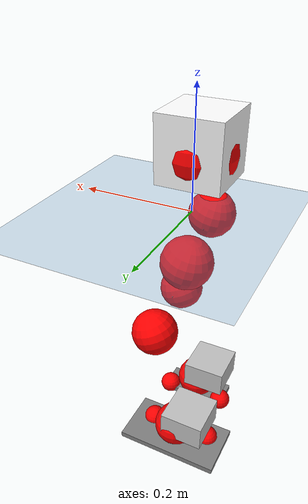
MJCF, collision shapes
<mujoco model="pi_12dof_release_v1">
  <compiler angle="radian" assetdir="assets" balanceinertia="true" inertiafromgeom="false"/>

  <option timestep="0.005" density="1.2" viscosity="2e-05"/>

  <size nkey="1"/>

  <visual>
    <quality shadowsize="8192"/>
    <map shadowclip="0.5"/>
  </visual>

  <default>
    <default class="/">
      <joint armature="0.01" damping="0.01" frictionloss="0.01"/>
      <geom contype="0" conaffinity="0" group="1" solref="-1000 -80"/>
      <site size="0.01 0.005 0.005" group="5"/>
      <general forcelimited="true" biastype="affine" gainprm="20" biasprm="0 -20 -0.5"/>
      <default class="foot">
        <geom size="0.0845 0.036 0.005" type="box" condim="6" group="4" priority="1" friction="0.9 0.2 0.2" solimp="0.015 1 0.005"/>
      </default>
      <default class="reward_collision_sphere">
        <geom group="5" rgba="1 0 0 1"/>
      </default>
    </default>
  </default>

  <asset>
    <texture type="skybox" colorspace="auto" name="//unnamed_texture_0" builtin="gradient" rgb1="0.95 0.95 0.95" rgb2="0.95 0.95 0.95" width="100" height="600"/>
    <texture type="2d" colorspace="auto" name="texplane" builtin="checker" rgb1="0.345 0.575 0.748" rgb2="0.345 0.575 0.748" markrgb="1 1 1" width="512" height="512"/>
    <material name="MatPlane" class="/" texture="texplane" texuniform="true" texrepeat="2 2" specular="0.9"/>
    <mesh name="baselink_1" class="/" file="baselink_1.STL"/>
    <mesh name="r_hip_pitch_link" class="/" file="r_hip_pitch_link.STL"/>
    <mesh name="r_hip_roll_link" class="/" file="r_hip_roll_link.STL"/>
    <mesh name="r_thigh_link" class="/" file="r_thigh_link.STL"/>
    <mesh name="r_calf_link" class="/" file="r_calf_link.STL"/>
    <mesh name="r_ankle_pitch_link" class="/" file="r_ankle_pitch_link.STL"/>
    <mesh name="r_ankle_roll_link" class="/" file="r_ankle_roll_link.STL"/>
    <mesh name="l_hip_pitch_link" class="/" file="l_hip_pitch_link.STL"/>
    <mesh name="l_hip_roll_link" class="/" file="l_hip_roll_link.STL"/>
    <mesh name="l_thigh_link" class="/" file="l_thigh_link.STL"/>
    <mesh name="l_calf_link" class="/" file="l_calf_link.STL"/>
    <mesh name="l_ankle_pitch_link" class="/" file="l_ankle_pitch_link.STL"/>
    <mesh name="l_ankle_roll_link" class="/" file="l_ankle_roll_link.STL"/>
  </asset>

  <worldbody>
    <geom name="floor" class="/" size="100 100 0.125" type="plane" group="0" material="MatPlane"/>
    <light name="toplight_shadow" class="/" pos="0 0 5" dir="0.0990148 0.0990148 -0.990148" type="directional" ambient="0.04 0.04 0.04" diffuse="0.55 0.55 0.55" specular="0.12 0.12 0.12"/>
    <light name="toplight_fill" class="/" pos="0 0 5" dir="0.0990148 0.0990148 -0.990148" type="directional" castshadow="false" ambient="0.04 0.04 0.04" diffuse="0.3 0.3 0.3" specular="0.08 0.08 0.08"/>
    <body name="trunk" pos="-0.00966211 -0.00304524 -0.00119879" quat="1 0.000366056 0.000108052 0.000385989">
      <inertial pos="0.00317217 -0.00187037 0.0570046" quat="0.701386 0.00457112 0.031237 0.712082" mass="2.70374" diaginertia="0.00419973 0.00511383 0.0222781"/>
      <joint name="//unnamed_joint_0" type="free"/>
      <geom name="//unnamed_geom_1" class="/" type="mesh" density="0" rgba="1 1 1 1" mesh="baselink_1"/>
      <geom name="//unnamed_geom_2" class="/" size="0.0536645 0.0536645 0.0536645" pos="0 0 0.112445" type="box" rgba="1 1 1 1"/>
      <geom name="//unnamed_geom_3" class="reward_collision_sphere" size="0.059031" pos="0 0 0.0983892"/>
      <site name="imu" class="/" pos="-0.00758449 -0.00178669 0.0558144" size="0.0107329"/>
      <camera name="track" class="/" pos="0 -1.85538 0" quat="0.707107 0.707107 0 0" mode="trackcom"/>
      <camera name="ego_camera" class="/" pos="0.0664967 0 0.253001" quat="-0.5 -0.5 0.5 0.5"/>
      <body name="r_hip_pitch_link" pos="-0.00339499 -0.0198879 -0.0409596" quat="0.991707 0.00136 -0.1285 0.00151578">
        <inertial pos="0.0114049 -0.048196 -0.000115999" quat="-0.020186 0.706265 -0.0343957 0.706823" mass="0.452698" diaginertia="5.87688e-05 7.19332e-05 0.000443733"/>
        <joint name="r_hip_pitch_joint" class="/" pos="0 0 0" axis="-0.0408182 -0.999129 -0.00871238" range="-1.95949 1.12209" armature="0.0109596" damping="0" frictionloss="0.0105145"/>
        <geom name="//unnamed_geom_4" class="/" type="mesh" density="0" rgba="0.75294 0.75294 0.75294 1" mesh="r_hip_pitch_link"/>
        <geom name="//unnamed_geom_5" class="/" size="0.000536645 0.000536645 0.000536645" type="box" rgba="0.75294 0.75294 0.75294 1"/>
        <body name="r_hip_roll_link" pos="0.0062992 -0.0516139 0.00509411" quat="0.999998 0.00136907 0.00101411 -0.000357631">
          <inertial pos="-0.000368412 -0.00156628 -0.0738404" quat="0.694992 -0.067586 -0.0871 0.710515" mass="0.503795" diaginertia="0.000192429 0.000197643 0.00071132"/>
          <joint name="r_hip_roll_joint" class="/" pos="0 0 0" axis="-0.999064 -0.0399177 -0.0166942" stiffness="0.00280559" range="-0.105219 0.307821" armature="0.00863056" damping="0.0267421" frictionloss="0.0145684"/>
          <geom name="//unnamed_geom_6" class="/" type="mesh" density="0" rgba="0.75294 0.75294 0.75294 1" mesh="r_hip_roll_link"/>
          <geom name="//unnamed_geom_7" class="/" size="0.000536645 0.000536645 0.000536645" type="box" rgba="0.75294 0.75294 0.75294 1"/>
          <geom name="//unnamed_geom_8" class="reward_collision_sphere" size="0.0429316"/>
          <body name="r_thigh_link" pos="-0.00322185 0.0122234 -0.0967286" quat="0.999994 0.00132926 0.00304834 0.00112134">
            <inertial pos="-0.00412203 0.00191186 -0.0671938" quat="0.74271 0.667607 -0.0285118 -0.0432387" mass="0.120332" diaginertia="6.96884e-05 6.13586e-05 0.000327822"/>
            <joint name="r_thigh_joint" class="/" pos="0 0 0" axis="-0.0184346 -0.0188906 -0.999652" stiffness="0.0559147" range="-0.442214 0.373442" armature="0.0114004" damping="0.0104671" frictionloss="0.0128618"/>
            <geom name="//unnamed_geom_9" class="/" type="mesh" density="0" rgba="0.75294 0.75294 0.75294 1" mesh="r_thigh_link"/>
            <geom name="//unnamed_geom_10" class="/" size="0.000536645 0.000536645 0.000536645" type="box" rgba="0.75294 0.75294 0.75294 1"/>
            <body name="r_calf_link" pos="0.0117636 -0.0137877 -0.0902481" quat="0.947893 0.000192626 0.31859 0.000325078">
              <inertial pos="-0.0116706 -0.00246945 -0.0877984" quat="0.999603 0.0233014 -0.00526004 0.0149615" mass="0.871891" diaginertia="0.00163853 0.0022414 0.000828202"/>
              <joint name="r_calf_joint" class="/" pos="0 0 0" axis="-0.0512846 -0.998636 -0.00978392" stiffness="0.0209267" range="-1.67441 0.643156" armature="0.00852538" damping="0.00754962" frictionloss="0.0107404"/>
              <geom name="//unnamed_geom_11" class="/" type="mesh" density="0" rgba="0.75294 0.75294 0.75294 1" mesh="r_calf_link"/>
              <geom name="//unnamed_geom_12" class="/" size="0.000536645 0.000536645 0.000536645" type="box" rgba="0.75294 0.75294 0.75294 1"/>
              <geom name="//unnamed_geom_13" class="reward_collision_sphere" size="0.0429316"/>
              <body name="r_ankle_pitch_link" pos="0.0013622 0.00699505 -0.202397" quat="0.980056 -4.05389e-05 -0.198723 2.59239e-05">
                <inertial pos="0.00871067 -0.00932574 -0.00153681" quat="0.00135322 0.706705 -0.00383298 0.707497" mass="0.211153" diaginertia="0.000165957 0.000148098 0.000642528"/>
                <joint name="r_ankle_pitch_joint" class="/" pos="0 0 0" axis="-0.0315181 -0.999501 -0.00224487" range="-1.36927 0.512775" armature="0.0150412" damping="0" frictionloss="0.0145055"/>
                <geom name="//unnamed_geom_14" class="/" type="mesh" density="0" rgba="0.75294 0.75294 0.75294 1" mesh="r_ankle_pitch_link"/>
                <geom name="//unnamed_geom_15" class="/" size="0.0418583 0.0429316 0.0268323" type="box" rgba="0.75294 0.75294 0.75294 1"/>
                <body name="r_ankle_roll_link" pos="0.0709319 0.000941291 -0.00893191" quat="0.999983 0.00559533 0.00127615 -0.000379833">
                  <inertial pos="-0.0338293 0.00647166 -0.0290278" quat="0.560688 0.43041 0.434404 0.558274" mass="0.710252" diaginertia="0.000583786 0.000627008 0.00132727"/>
                  <joint name="r_ankle_roll_joint" class="/" pos="0 0 0" axis="-0.998315 0.0577361 -0.00585384" stiffness="0.028047" range="-0.131676 0.149507" armature="0.0100563" damping="0" frictionloss="0.0106784"/>
                  <geom name="//unnamed_geom_16" class="/" type="mesh" density="0" rgba="0.75294 0.75294 0.75294 1" mesh="r_ankle_roll_link"/>
                  <geom name="//unnamed_geom_17" class="/" type="mesh" rgba="0.75294 0.75294 0.75294 1" mesh="r_ankle_roll_link"/>
                  <geom name="right_foot" class="foot" size="0.0667272 0.0304426 0.00543096" pos="-0.0452178 0 -0.0618446"/>
                  <geom name="//unnamed_geom_19" class="reward_collision_sphere" size="0.0429316" pos="-0.0443311 0 -0.0281112"/>
                  <geom name="//unnamed_geom_20" class="reward_collision_sphere" size="0.0214658" pos="0.0132993 0.0185538 -0.0562224"/>
                  <geom name="//unnamed_geom_21" class="reward_collision_sphere" size="0.0214658" pos="-0.106395 0.0185538 -0.0562224"/>
                  <site name="right_foot" class="foot" pos="-0.0452178 0 -0.0618446" size="0.0107329"/>
                </body>
              </body>
            </body>
          </body>
        </body>
      </body>
      <body name="l_hip_pitch_link" pos="-0.0129839 0.0310309 -0.0450524" quat="0.992094 0.000541318 -0.125494 -4.04199e-05">
        <inertial pos="-0.0100307 0.0628424 0.000345001" quat="-0.0115735 0.692309 -0.00232396 0.721504" mass="0.499402" diaginertia="7.04638e-05 7.14589e-05 0.000605368"/>
        <joint name="l_hip_pitch_joint" class="/" pos="0 0 0" axis="0.0625189 0.998044 0.000552649" stiffness="0.0488056" range="-1.0417 1.76289" armature="0.0164009" damping="0.00755153" frictionloss="0.0084445"/>
        <geom name="//unnamed_geom_22" class="/" type="mesh" density="0" rgba="0.75294 0.75294 0.75294 1" mesh="l_hip_pitch_link"/>
        <geom name="//unnamed_geom_23" class="/" size="0.000536645 0.000536645 0.000536645" type="box" rgba="0.75294 0.75294 0.75294 1"/>
        <body name="l_hip_roll_link" pos="-0.00495057 0.0496358 0.000229711" quat="0.999999 0.0012285 -9.07318e-05 0.000638003">
          <inertial pos="-0.00225054 -0.0108704 -0.0847219" quat="0.688404 -0.059161 -0.110971 0.714342" mass="0.43373" diaginertia="0.000179904 0.000176598 0.000738709"/>
          <joint name="l_hip_roll_joint" class="/" pos="0 0 0" axis="-0.999709 0.0240946 0.00110946" stiffness="0.0287301" range="-0.513436 0.0295131" armature="0.00570751" damping="0.0314434" frictionloss="0.0135757"/>
          <geom name="//unnamed_geom_24" class="/" type="mesh" density="0" rgba="0.75294 0.75294 0.75294 1" mesh="l_hip_roll_link"/>
          <geom name="//unnamed_geom_25" class="/" size="0.000536645 0.000536645 0.000536645" type="box" rgba="0.75294 0.75294 0.75294 1"/>
          <geom name="//unnamed_geom_26" class="reward_collision_sphere" size="0.0429316"/>
          <body name="l_thigh_link" pos="0.00622461 -0.0084671 -0.0855358" quat="0.999982 -9.51712e-05 -0.0035513 -0.00484424">
            <inertial pos="0.00121309 -0.000700706 -0.0796787" quat="0.664723 0.746818 -0.0131533 -0.0152684" mass="0.159565" diaginertia="6.82319e-05 6.93291e-05 0.000329636"/>
            <joint name="l_thigh_joint" class="/" pos="0 0 0" axis="0.0049149 0.0110697 -0.999927" stiffness="0.000818161" range="-0.386331 0.266166" armature="0.0110257" damping="0.0403627" frictionloss="0.011213"/>
            <geom name="//unnamed_geom_27" class="/" type="mesh" density="0" rgba="0.75294 0.75294 0.75294 1" mesh="l_thigh_link"/>
            <geom name="//unnamed_geom_28" class="/" size="0.000536645 0.000536645 0.000536645" type="box" rgba="0.75294 0.75294 0.75294 1"/>
            <body name="l_calf_link" pos="0.0109215 -0.00338056 -0.0996236" quat="0.947604 -0.000203803 0.319444 0.001267">
              <inertial pos="-0.00698625 -0.00122361 -0.100697" quat="0.998703 -0.0372746 0.0308249 -0.0159173" mass="1.00442" diaginertia="0.00180652 0.00222273 0.000889614"/>
              <joint name="l_calf_joint" class="/" pos="0 0 0" axis="0.0284544 0.998895 0.0374082" stiffness="0.0046825" range="-0.785707 1.59063" armature="0.0116471" damping="0.0131239" frictionloss="0.0154111"/>
              <geom name="//unnamed_geom_29" class="/" type="mesh" density="0" rgba="0.75294 0.75294 0.75294 1" mesh="l_calf_link"/>
              <geom name="//unnamed_geom_30" class="/" size="0.000536645 0.000536645 0.000536645" type="box" rgba="0.75294 0.75294 0.75294 1"/>
              <geom name="//unnamed_geom_31" class="reward_collision_sphere" size="0.0429316"/>
              <body name="l_ankle_pitch_link" pos="0.000769019 0.00381844 -0.206446" quat="0.980091 -0.00140601 -0.198541 -0.000204215">
                <inertial pos="0.00299253 -0.00203996 -0.00195023" quat="0.0521208 0.71781 -0.0190597 0.694023" mass="0.22483" diaginertia="0.000168585 0.000138622 0.00056705"/>
                <joint name="l_ankle_pitch_joint" class="/" pos="0 0 0" axis="-0.0019725 0.999922 0.0123026" range="-0.636797 1.18063" armature="0.0116841" damping="0.0421919" frictionloss="0.010515"/>
                <geom name="//unnamed_geom_32" class="/" type="mesh" density="0" rgba="0.75294 0.75294 0.75294 1" mesh="l_ankle_pitch_link"/>
                <geom name="//unnamed_geom_33" class="/" size="0.0418583 0.0429316 0.0268323" type="box" rgba="0.75294 0.75294 0.75294 1"/>
                <body name="l_ankle_roll_link" pos="0.0702938 0.00468893 0.000319905" quat="1 -0.000419336 0.00039595 0.00076172">
                  <inertial pos="-0.0116886 0.0117315 -0.031049" quat="0.562351 0.427564 0.429898 0.562261" mass="0.564231" diaginertia="0.000662763 0.000620762 0.00155028"/>
                  <joint name="l_ankle_roll_joint" class="/" pos="0 0 0" axis="-0.999957 -0.00837959 -0.00409027" range="-0.174058 0.271861" armature="0.0109138" damping="0" frictionloss="0.0056702"/>
                  <geom name="//unnamed_geom_34" class="/" type="mesh" density="0" rgba="0.75294 0.75294 0.75294 1" mesh="l_ankle_roll_link"/>
                  <geom name="//unnamed_geom_35" class="/" type="mesh" rgba="0.75294 0.75294 0.75294 1" mesh="l_ankle_roll_link"/>
                  <geom name="left_foot" class="foot" size="0.10033 0.0527631 0.00590654" pos="-0.0452178 0 -0.0618446"/>
                  <geom name="//unnamed_geom_37" class="reward_collision_sphere" size="0.0429316" pos="-0.0443311 0 -0.0281112"/>
                  <geom name="//unnamed_geom_38" class="reward_collision_sphere" size="0.0214658" pos="0.0132993 -0.0185538 -0.0562224"/>
                  <geom name="//unnamed_geom_39" class="reward_collision_sphere" size="0.0214658" pos="-0.106395 -0.0185538 -0.0562224"/>
                  <site name="left_foot" class="foot" pos="-0.0452178 0 -0.0618446" size="0.0107329"/>
                </body>
              </body>
            </body>
          </body>
        </body>
      </body>
    </body>
  </worldbody>

  <contact>
    <pair class="/" geom1="floor" geom2="right_foot" name="//unnamed_contact_1"/>
    <pair class="/" geom1="floor" geom2="left_foot" name="//unnamed_contact_0"/>
  </contact>

  <actuator>
    <general name="r_hip_pitch_joint" class="/" joint="r_hip_pitch_joint" forcerange="-19.414 19.414" gainprm="21.9305" biasprm="0 -21.9305 -0.57331"/>
    <general name="r_hip_roll_joint" class="/" joint="r_hip_roll_joint" forcerange="-14.0377 14.0377" gainprm="21.9305" biasprm="0 -21.9305 -0.57331"/>
    <general name="r_thigh_joint" class="/" joint="r_thigh_joint" forcerange="-25.1315 25.1315" gainprm="21.9305" biasprm="0 -21.9305 -0.57331"/>
    <general name="r_calf_joint" class="/" joint="r_calf_joint" forcerange="-12.8995 12.8995" gainprm="21.9305" biasprm="0 -21.9305 -0.57331"/>
    <general name="r_ankle_pitch_joint" class="/" joint="r_ankle_pitch_joint" forcerange="-23.6554 23.6554" gainprm="21.9305" biasprm="0 -21.9305 -0.57331"/>
    <general name="r_ankle_roll_joint" class="/" joint="r_ankle_roll_joint" forcerange="-20.8638 20.8638" gainprm="21.9305" biasprm="0 -21.9305 -0.57331"/>
    <general name="l_hip_pitch_joint" class="/" joint="l_hip_pitch_joint" forcerange="-22.5021 22.5021" gainprm="21.9305" biasprm="0 -21.9305 -0.57331"/>
    <general name="l_hip_roll_joint" class="/" joint="l_hip_roll_joint" forcerange="-29.9635 29.9635" gainprm="21.9305" biasprm="0 -21.9305 -0.57331"/>
    <general name="l_thigh_joint" class="/" joint="l_thigh_joint" forcerange="-19.5928 19.5928" gainprm="21.9305" biasprm="0 -21.9305 -0.57331"/>
    <general name="l_calf_joint" class="/" joint="l_calf_joint" forcerange="-22.508 22.508" gainprm="21.9305" biasprm="0 -21.9305 -0.57331"/>
    <general name="l_ankle_pitch_joint" class="/" joint="l_ankle_pitch_joint" forcerange="-22.9708 22.9708" gainprm="21.9305" biasprm="0 -21.9305 -0.57331"/>
    <general name="l_ankle_roll_joint" class="/" joint="l_ankle_roll_joint" forcerange="-17.8469 17.8469" gainprm="21.9305" biasprm="0 -21.9305 -0.57331"/>
  </actuator>

  <sensor>
    <gyro site="imu" name="imu_angular_velocity"/>
    <velocimeter site="imu" name="imu_linear_velocity"/>
    <framelinvel objtype="site" objname="left_foot" name="left_foot_global_linear_velocity"/>
    <framelinvel objtype="site" objname="right_foot" name="right_foot_global_linear_velocity"/>
  </sensor>

  <keyframe>
    <key name="home" qpos="0 0 0.291 1 0 0 0 0.4 0 0 -0.8 0.4 0 -0.4 0 0 0.8 -0.4 0"/>
  </keyframe>
</mujoco>
